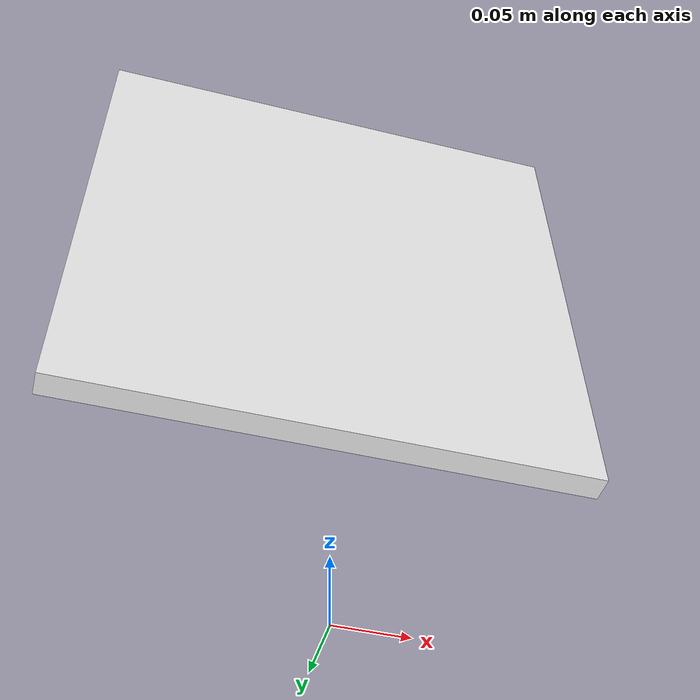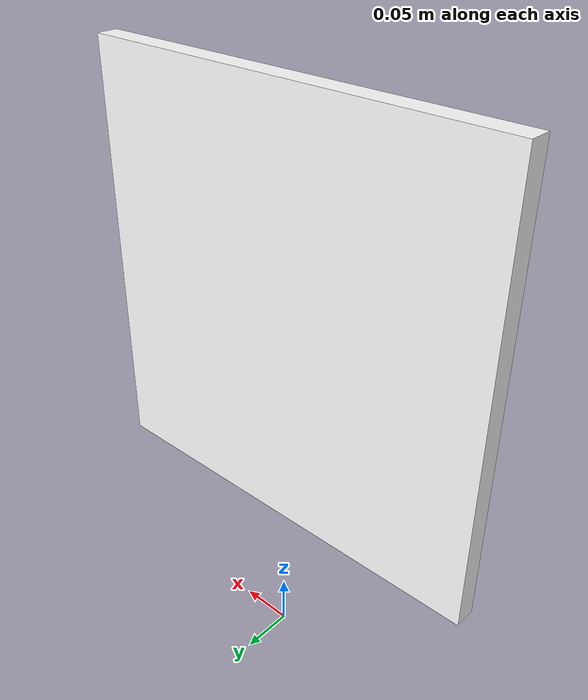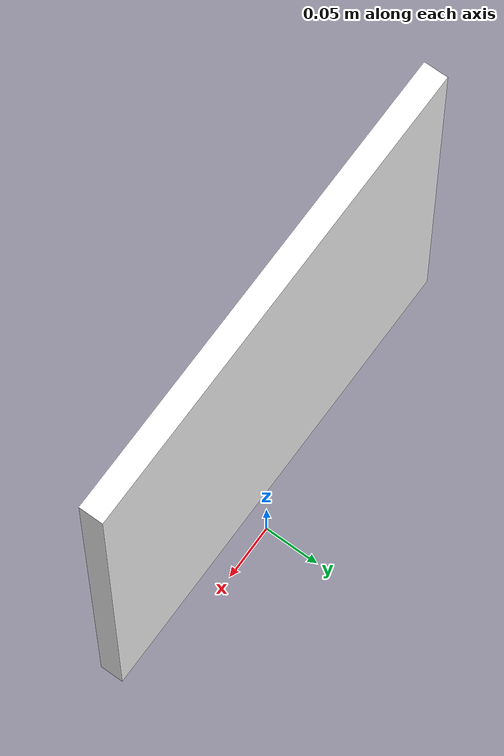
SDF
<?xml version="1.0" ?>
<sdf version="1.8">
  <model name="aruco_marker_0">
    <static>true</static>

    <link name="link">
      <!-- 竖直 marker board -->
      <pose>0 0 0.35 0 0 0</pose>

      <visual name="marker_visual">
        <geometry>
          <box>
            <size>0.4 0.02 0.4</size>
          </box>
        </geometry>

        <material>
          <diffuse>1 1 1 1</diffuse>
          <pbr>
            <metal>
              <albedo_map>model://aruco_marker_0/materials/textures/marker_0_init.png</albedo_map>
              <roughness>0.8</roughness>
              <metalness>0.0</metalness>
            </metal>
          </pbr>
        </material>
      </visual>

      <collision name="marker_collision">
        <geometry>
          <box>
            <size>0.4 0.02 0.4</size>
          </box>
        </geometry>
      </collision>
    </link>
  </model>
</sdf>
